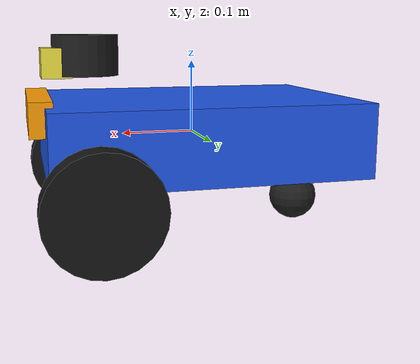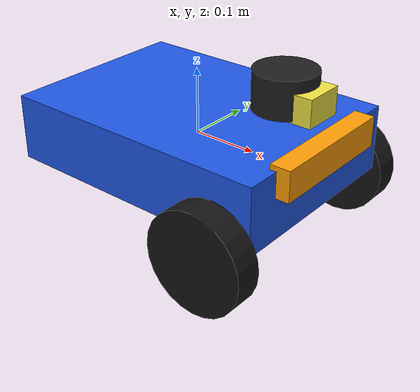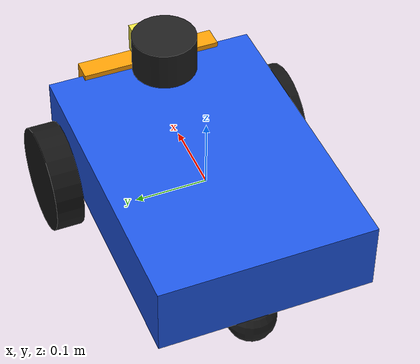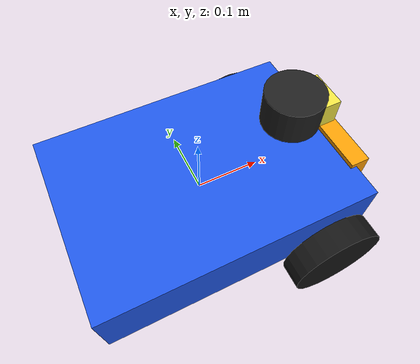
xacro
<?xml version="1.0"?>
<robot xmlns:xacro="http://www.ros.org/wiki/xacro" name="rse_bot">
  <xacro:property name="wheel_radius" value="0.075"/>
  <xacro:property name="wheel_width" value="0.04"/>

  <material name="body_blue"><color rgba="0.12 0.34 0.90 1"/></material>
  <material name="front_orange"><color rgba="1.0 0.62 0.02 1"/></material>
  <material name="wheel_black"><color rgba="0.08 0.08 0.08 1"/></material>
  <material name="sensor_dark"><color rgba="0.12 0.12 0.12 1"/></material>

  <link name="base_link">
    <visual>
      <origin xyz="0 0 0" rpy="0 0 0"/>
      <geometry><box size="0.42 0.30 0.10"/></geometry>
      <material name="body_blue"/>
    </visual>
    <visual>
      <origin xyz="0.215 0 0.035" rpy="0 0 0"/>
      <geometry><box size="0.03 0.20 0.045"/></geometry>
      <material name="front_orange"/>
    </visual>
  </link>

  <link name="left_wheel_link">
    <visual>
      <origin xyz="0 0 0" rpy="1.57079632679 0 0"/>
      <geometry><cylinder radius="${wheel_radius}" length="${wheel_width}"/></geometry>
      <material name="wheel_black"/>
    </visual>
  </link>

  <joint name="left_wheel_joint" type="continuous">
    <parent link="base_link"/>
    <child link="left_wheel_link"/>
    <origin xyz="0.15 0.17 -0.065" rpy="0 0 0"/>
    <axis xyz="0 1 0"/>
  </joint>

  <link name="right_wheel_link">
    <visual>
      <origin xyz="0 0 0" rpy="1.57079632679 0 0"/>
      <geometry><cylinder radius="${wheel_radius}" length="${wheel_width}"/></geometry>
      <material name="wheel_black"/>
    </visual>
  </link>

  <link name="camera_link">
    <visual>
      <geometry>
        <box size="0.04 0.06 0.04"/>
      </geometry>
    </visual>
  </link>

  <joint name="camera_joint" type="fixed">
    <parent link="base_link"/>
    <child link="camera_link"/>
    <origin xyz="0.19 0 0.10" rpy="0 0 0"/>
  </joint>

  <link name="camera_optical_frame"/>

  <joint name="camera_optical_joint" type="fixed">
    <parent link="camera_link"/>
    <child link="camera_optical_frame"/>
    <origin xyz="0 0 0"
            rpy="-1.57079632679 0 -1.57079632679"/>
  </joint>

  <joint name="right_wheel_joint" type="continuous">
    <parent link="base_link"/>
    <child link="right_wheel_link"/>
    <origin xyz="0.15 -0.17 -0.065" rpy="0 0 0"/>
    <axis xyz="0 1 0"/>
  </joint>

  <link name="caster_link">
    <visual>
      <geometry><sphere radius="0.035"/></geometry>
      <material name="sensor_dark"/>
    </visual>
  </link>

  <joint name="caster_joint" type="fixed">
    <parent link="base_link"/>
    <child link="caster_link"/>
    <origin xyz="-0.16 0 -0.105" rpy="0 0 0"/>
  </joint>

  <link name="lidar_link">
    <visual>
      <geometry><cylinder radius="0.045" length="0.055"/></geometry>
      <material name="sensor_dark"/>
    </visual>
  </link>

  <joint name="lidar_joint" type="fixed">
    <parent link="base_link"/>
    <child link="lidar_link"/>
    <origin xyz="0.15 0 0.11" rpy="0 0 0"/>
  </joint>
</robot>
